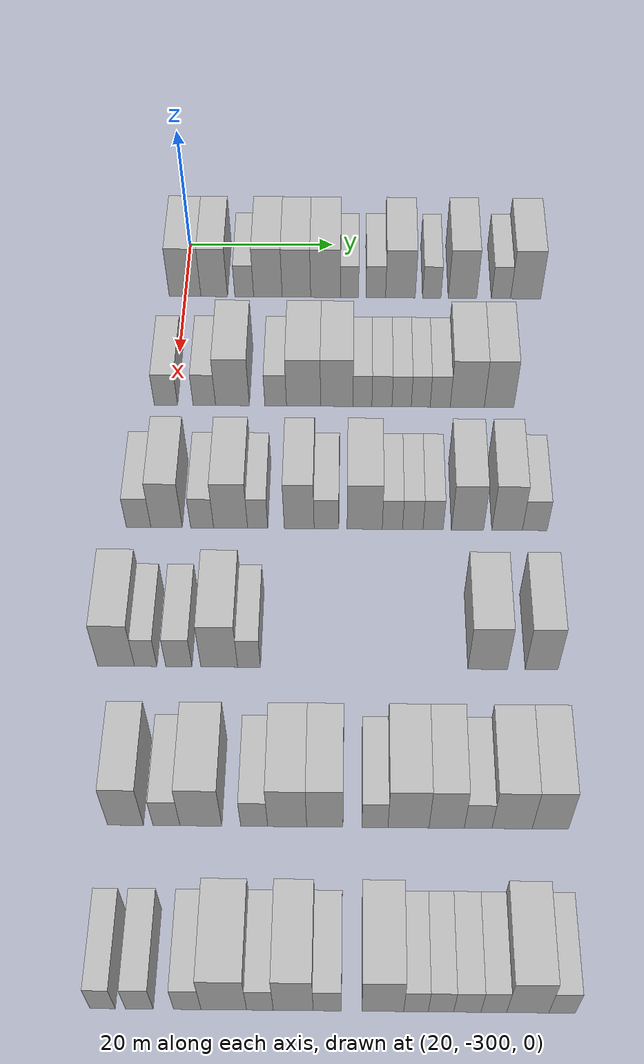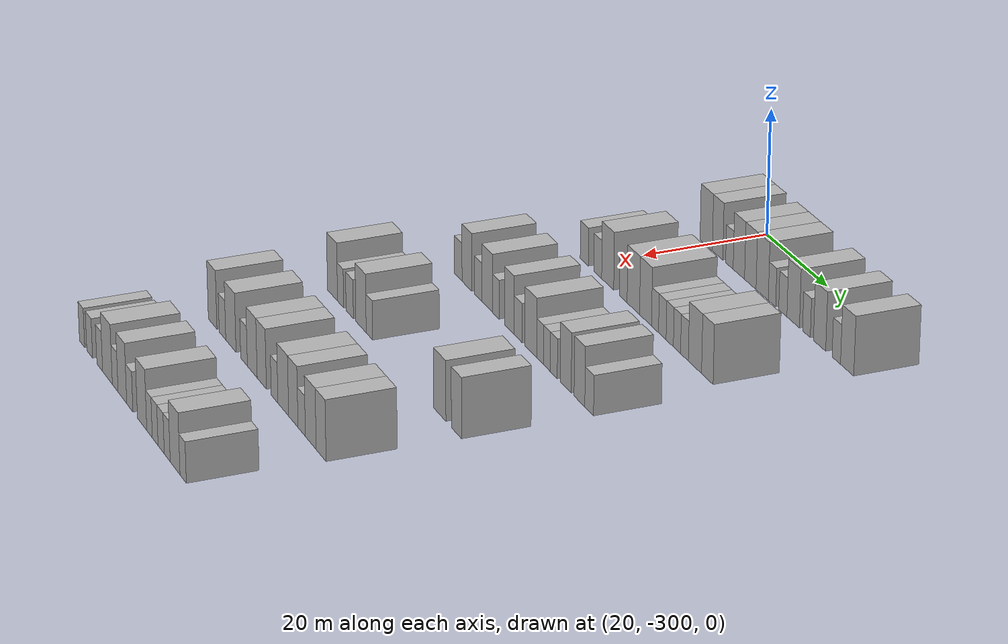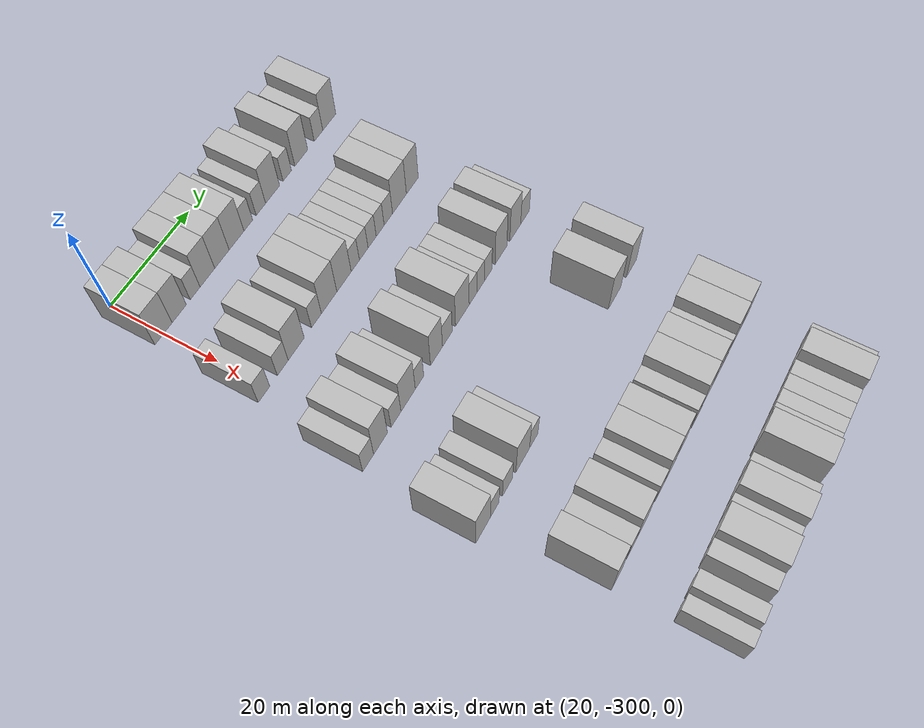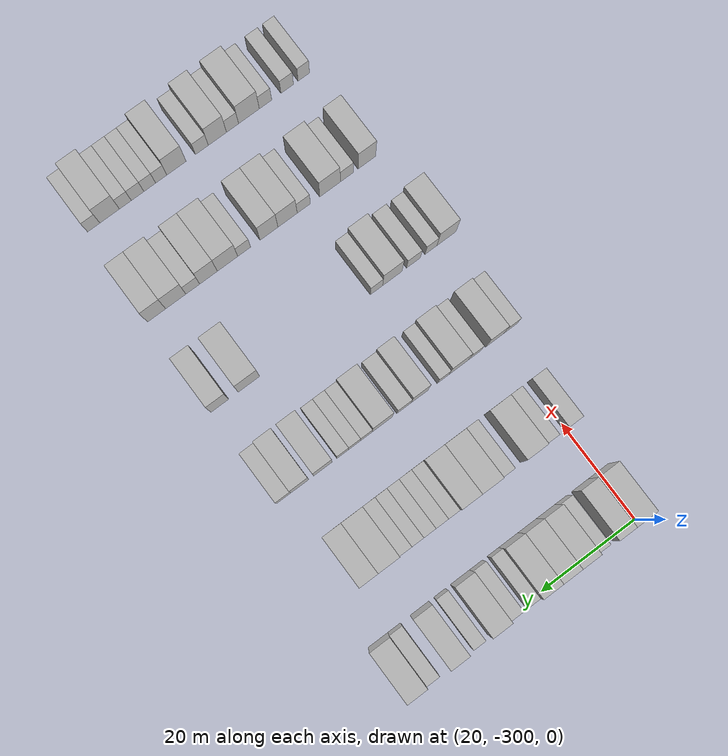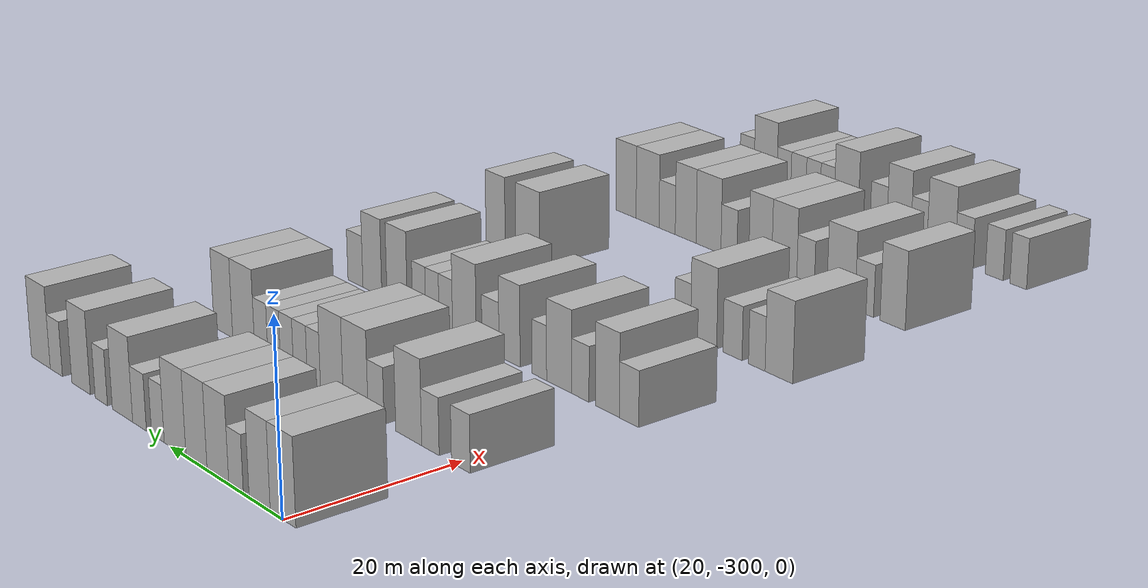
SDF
<sdf version="1.6">
 <world name="default">
  <model name="building_13">
   <static>1</static>
   <pose>25.0000 -299.9994 0 0.000000 0.000000 0.000000</pose>
   <link name="link">
    <pose>0 0 4.50 0 0 0</pose>
    <collision name="collision"><geometry><box><size>10.0000 4.3122 9.0000</size></box></geometry></collision>
    <visual name="visual">
     <cast_shadows>0</cast_shadows>
     <geometry><box><size>10.0000 4.3122 9.0000</size></box></geometry>
     <material>
      <script>
       <uri>model://HANNAS_wall/materials/scripts</uri>
       <uri>model://HANNAS_wall/materials/textures</uri>
       <name>vrc/HANNAS_wall</name>
      </script>
     </material>
    </visual>
   </link>
  </model>
  <model name="building_14">
   <static>1</static>
   <pose>25.0000 -296.0288 0 0.000000 0.000000 0.000000</pose>
   <link name="link">
    <pose>0 0 4.50 0 0 0</pose>
    <collision name="collision"><geometry><box><size>10.0000 3.6291 9.0000</size></box></geometry></collision>
    <visual name="visual">
     <cast_shadows>0</cast_shadows>
     <geometry><box><size>10.0000 3.6291 9.0000</size></box></geometry>
     <material>
      <script>
       <uri>model://HANNAS_wall/materials/scripts</uri>
       <uri>model://HANNAS_wall/materials/textures</uri>
       <name>vrc/HANNAS_wall</name>
      </script>
     </material>
    </visual>
   </link>
  </model>
  <model name="building_15">
   <static>1</static>
   <pose>25.0000 -291.9321 0 0.000000 0.000000 0.000000</pose>
   <link name="link">
    <pose>0 0 3.00 0 0 0</pose>
    <collision name="collision"><geometry><box><size>10.0000 2.5641 6.0000</size></box></geometry></collision>
    <visual name="visual">
     <cast_shadows>0</cast_shadows>
     <geometry><box><size>10.0000 2.5641 6.0000</size></box></geometry>
     <material>
      <script>
       <uri>model://HANNAS_wall/materials/scripts</uri>
       <uri>model://HANNAS_wall/materials/textures</uri>
       <name>vrc/HANNAS_wall</name>
      </script>
     </material>
    </visual>
   </link>
  </model>
  <model name="building_16">
   <static>1</static>
   <pose>25.0000 -288.7070 0 0.000000 0.000000 0.000000</pose>
   <link name="link">
    <pose>0 0 4.50 0 0 0</pose>
    <collision name="collision"><geometry><box><size>10.0000 3.8862 9.0000</size></box></geometry></collision>
    <visual name="visual">
     <cast_shadows>0</cast_shadows>
     <geometry><box><size>10.0000 3.8862 9.0000</size></box></geometry>
     <material>
      <script>
       <uri>model://HANNAS_wall/materials/scripts</uri>
       <uri>model://HANNAS_wall/materials/textures</uri>
       <name>vrc/HANNAS_wall</name>
      </script>
     </material>
    </visual>
   </link>
  </model>
  <model name="building_17">
   <static>1</static>
   <pose>25.0000 -284.8206 0 0.000000 0.000000 0.000000</pose>
   <link name="link">
    <pose>0 0 4.50 0 0 0</pose>
    <collision name="collision"><geometry><box><size>10.0000 3.8864 9.0000</size></box></geometry></collision>
    <visual name="visual">
     <cast_shadows>0</cast_shadows>
     <geometry><box><size>10.0000 3.8864 9.0000</size></box></geometry>
     <material>
      <script>
       <uri>model://HANNAS_wall/materials/scripts</uri>
       <uri>model://HANNAS_wall/materials/textures</uri>
       <name>vrc/HANNAS_wall</name>
      </script>
     </material>
    </visual>
   </link>
  </model>
  <model name="building_18">
   <static>1</static>
   <pose>25.0000 -280.8364 0 0.000000 0.000000 0.000000</pose>
   <link name="link">
    <pose>0 0 4.50 0 0 0</pose>
    <collision name="collision"><geometry><box><size>10.0000 4.0821 9.0000</size></box></geometry></collision>
    <visual name="visual">
     <cast_shadows>0</cast_shadows>
     <geometry><box><size>10.0000 4.0821 9.0000</size></box></geometry>
     <material>
      <script>
       <uri>model://HANNAS_wall/materials/scripts</uri>
       <uri>model://HANNAS_wall/materials/textures</uri>
       <name>vrc/HANNAS_wall</name>
      </script>
     </material>
    </visual>
   </link>
  </model>
  <model name="building_19">
   <static>1</static>
   <pose>25.0000 -277.5818 0 0.000000 0.000000 0.000000</pose>
   <link name="link">
    <pose>0 0 3.00 0 0 0</pose>
    <collision name="collision"><geometry><box><size>10.0000 2.4271 6.0000</size></box></geometry></collision>
    <visual name="visual">
     <cast_shadows>0</cast_shadows>
     <geometry><box><size>10.0000 2.4271 6.0000</size></box></geometry>
     <material>
      <script>
       <uri>model://HANNAS_wall/materials/scripts</uri>
       <uri>model://HANNAS_wall/materials/textures</uri>
       <name>vrc/HANNAS_wall</name>
      </script>
     </material>
    </visual>
   </link>
  </model>
  <model name="building_20">
   <static>1</static>
   <pose>25.0000 -274.0296 0 0.000000 0.000000 0.000000</pose>
   <link name="link">
    <pose>0 0 3.00 0 0 0</pose>
    <collision name="collision"><geometry><box><size>10.0000 2.6774 6.0000</size></box></geometry></collision>
    <visual name="visual">
     <cast_shadows>0</cast_shadows>
     <geometry><box><size>10.0000 2.6774 6.0000</size></box></geometry>
     <material>
      <script>
       <uri>model://HANNAS_wall/materials/scripts</uri>
       <uri>model://HANNAS_wall/materials/textures</uri>
       <name>vrc/HANNAS_wall</name>
      </script>
     </material>
    </visual>
   </link>
  </model>
  <model name="building_21">
   <static>1</static>
   <pose>25.0000 -270.6690 0 0.000000 0.000000 0.000000</pose>
   <link name="link">
    <pose>0 0 4.50 0 0 0</pose>
    <collision name="collision"><geometry><box><size>10.0000 4.0437 9.0000</size></box></geometry></collision>
    <visual name="visual">
     <cast_shadows>0</cast_shadows>
     <geometry><box><size>10.0000 4.0437 9.0000</size></box></geometry>
     <material>
      <script>
       <uri>model://HANNAS_wall/materials/scripts</uri>
       <uri>model://HANNAS_wall/materials/textures</uri>
       <name>vrc/HANNAS_wall</name>
      </script>
     </material>
    </visual>
   </link>
  </model>
  <model name="building_22">
   <static>1</static>
   <pose>25.0000 -266.4008 0 0.000000 0.000000 0.000000</pose>
   <link name="link">
    <pose>0 0 3.00 0 0 0</pose>
    <collision name="collision"><geometry><box><size>10.0000 2.4927 6.0000</size></box></geometry></collision>
    <visual name="visual">
     <cast_shadows>0</cast_shadows>
     <geometry><box><size>10.0000 2.4927 6.0000</size></box></geometry>
     <material>
      <script>
       <uri>model://HANNAS_wall/materials/scripts</uri>
       <uri>model://HANNAS_wall/materials/textures</uri>
       <name>vrc/HANNAS_wall</name>
      </script>
     </material>
    </visual>
   </link>
  </model>
  <model name="building_23">
   <static>1</static>
   <pose>25.0000 -262.2214 0 0.000000 0.000000 0.000000</pose>
   <link name="link">
    <pose>0 0 4.50 0 0 0</pose>
    <collision name="collision"><geometry><box><size>10.0000 3.8660 9.0000</size></box></geometry></collision>
    <visual name="visual">
     <cast_shadows>0</cast_shadows>
     <geometry><box><size>10.0000 3.8660 9.0000</size></box></geometry>
     <material>
      <script>
       <uri>model://HANNAS_wall/materials/scripts</uri>
       <uri>model://HANNAS_wall/materials/textures</uri>
       <name>vrc/HANNAS_wall</name>
      </script>
     </material>
    </visual>
   </link>
  </model>
  <model name="building_24">
   <static>1</static>
   <pose>25.0000 -256.9810 0 0.000000 0.000000 0.000000</pose>
   <link name="link">
    <pose>0 0 3.00 0 0 0</pose>
    <collision name="collision"><geometry><box><size>10.0000 2.6148 6.0000</size></box></geometry></collision>
    <visual name="visual">
     <cast_shadows>0</cast_shadows>
     <geometry><box><size>10.0000 2.6148 6.0000</size></box></geometry>
     <material>
      <script>
       <uri>model://HANNAS_wall/materials/scripts</uri>
       <uri>model://HANNAS_wall/materials/textures</uri>
       <name>vrc/HANNAS_wall</name>
      </script>
     </material>
    </visual>
   </link>
  </model>
  <model name="building_25">
   <static>1</static>
   <pose>25.0000 -253.6319 0 0.000000 0.000000 0.000000</pose>
   <link name="link">
    <pose>0 0 4.50 0 0 0</pose>
    <collision name="collision"><geometry><box><size>10.0000 4.0835 9.0000</size></box></geometry></collision>
    <visual name="visual">
     <cast_shadows>0</cast_shadows>
     <geometry><box><size>10.0000 4.0835 9.0000</size></box></geometry>
     <material>
      <script>
       <uri>model://HANNAS_wall/materials/scripts</uri>
       <uri>model://HANNAS_wall/materials/textures</uri>
       <name>vrc/HANNAS_wall</name>
      </script>
     </material>
    </visual>
   </link>
  </model>
  <model name="building_186">
   <static>1</static>
   <pose>44.0000 -301.1050 0 0.000000 0.000000 0.000000</pose>
   <link name="link">
    <pose>0 0 3.00 0 0 0</pose>
    <collision name="collision"><geometry><box><size>10.0000 2.9947 6.0000</size></box></geometry></collision>
    <visual name="visual">
     <cast_shadows>0</cast_shadows>
     <geometry><box><size>10.0000 2.9947 6.0000</size></box></geometry>
     <material>
      <script>
       <uri>model://HANNAS_wall/materials/scripts</uri>
       <uri>model://HANNAS_wall/materials/textures</uri>
       <name>vrc/HANNAS_wall</name>
      </script>
     </material>
    </visual>
   </link>
  </model>
  <model name="building_187">
   <static>1</static>
   <pose>44.0000 -296.1640 0 0.000000 0.000000 0.000000</pose>
   <link name="link">
    <pose>0 0 3.00 0 0 0</pose>
    <collision name="collision"><geometry><box><size>10.0000 2.8872 6.0000</size></box></geometry></collision>
    <visual name="visual">
     <cast_shadows>0</cast_shadows>
     <geometry><box><size>10.0000 2.8872 6.0000</size></box></geometry>
     <material>
      <script>
       <uri>model://HANNAS_wall/materials/scripts</uri>
       <uri>model://HANNAS_wall/materials/textures</uri>
       <name>vrc/HANNAS_wall</name>
      </script>
     </material>
    </visual>
   </link>
  </model>
  <model name="building_188">
   <static>1</static>
   <pose>44.0000 -292.5445 0 0.000000 0.000000 0.000000</pose>
   <link name="link">
    <pose>0 0 4.50 0 0 0</pose>
    <collision name="collision"><geometry><box><size>10.0000 4.3517 9.0000</size></box></geometry></collision>
    <visual name="visual">
     <cast_shadows>0</cast_shadows>
     <geometry><box><size>10.0000 4.3517 9.0000</size></box></geometry>
     <material>
      <script>
       <uri>model://HANNAS_wall/materials/scripts</uri>
       <uri>model://HANNAS_wall/materials/textures</uri>
       <name>vrc/HANNAS_wall</name>
      </script>
     </material>
    </visual>
   </link>
  </model>
  <model name="building_189">
   <static>1</static>
   <pose>44.0000 -286.9796 0 0.000000 0.000000 0.000000</pose>
   <link name="link">
    <pose>0 0 3.00 0 0 0</pose>
    <collision name="collision"><geometry><box><size>10.0000 2.7782 6.0000</size></box></geometry></collision>
    <visual name="visual">
     <cast_shadows>0</cast_shadows>
     <geometry><box><size>10.0000 2.7782 6.0000</size></box></geometry>
     <material>
      <script>
       <uri>model://HANNAS_wall/materials/scripts</uri>
       <uri>model://HANNAS_wall/materials/textures</uri>
       <name>vrc/HANNAS_wall</name>
      </script>
     </material>
    </visual>
   </link>
  </model>
  <model name="building_190">
   <static>1</static>
   <pose>44.0000 -283.3926 0 0.000000 0.000000 0.000000</pose>
   <link name="link">
    <pose>0 0 4.50 0 0 0</pose>
    <collision name="collision"><geometry><box><size>10.0000 4.3957 9.0000</size></box></geometry></collision>
    <visual name="visual">
     <cast_shadows>0</cast_shadows>
     <geometry><box><size>10.0000 4.3957 9.0000</size></box></geometry>
     <material>
      <script>
       <uri>model://HANNAS_wall/materials/scripts</uri>
       <uri>model://HANNAS_wall/materials/textures</uri>
       <name>vrc/HANNAS_wall</name>
      </script>
     </material>
    </visual>
   </link>
  </model>
  <model name="building_191">
   <static>1</static>
   <pose>44.0000 -279.1192 0 0.000000 0.000000 0.000000</pose>
   <link name="link">
    <pose>0 0 4.50 0 0 0</pose>
    <collision name="collision"><geometry><box><size>10.0000 4.1512 9.0000</size></box></geometry></collision>
    <visual name="visual">
     <cast_shadows>0</cast_shadows>
     <geometry><box><size>10.0000 4.1512 9.0000</size></box></geometry>
     <material>
      <script>
       <uri>model://HANNAS_wall/materials/scripts</uri>
       <uri>model://HANNAS_wall/materials/textures</uri>
       <name>vrc/HANNAS_wall</name>
      </script>
     </material>
    </visual>
   </link>
  </model>
  <model name="building_192">
   <static>1</static>
   <pose>44.0000 -275.8319 0 0.000000 0.000000 0.000000</pose>
   <link name="link">
    <pose>0 0 3.00 0 0 0</pose>
    <collision name="collision"><geometry><box><size>10.0000 2.4233 6.0000</size></box></geometry></collision>
    <visual name="visual">
     <cast_shadows>0</cast_shadows>
     <geometry><box><size>10.0000 2.4233 6.0000</size></box></geometry>
     <material>
      <script>
       <uri>model://HANNAS_wall/materials/scripts</uri>
       <uri>model://HANNAS_wall/materials/textures</uri>
       <name>vrc/HANNAS_wall</name>
      </script>
     </material>
    </visual>
   </link>
  </model>
  <model name="building_193">
   <static>1</static>
   <pose>44.0000 -273.3295 0 0.000000 0.000000 0.000000</pose>
   <link name="link">
    <pose>0 0 3.00 0 0 0</pose>
    <collision name="collision"><geometry><box><size>10.0000 2.5814 6.0000</size></box></geometry></collision>
    <visual name="visual">
     <cast_shadows>0</cast_shadows>
     <geometry><box><size>10.0000 2.5814 6.0000</size></box></geometry>
     <material>
      <script>
       <uri>model://HANNAS_wall/materials/scripts</uri>
       <uri>model://HANNAS_wall/materials/textures</uri>
       <name>vrc/HANNAS_wall</name>
      </script>
     </material>
    </visual>
   </link>
  </model>
  <model name="building_194">
   <static>1</static>
   <pose>44.0000 -270.7969 0 0.000000 0.000000 0.000000</pose>
   <link name="link">
    <pose>0 0 3.00 0 0 0</pose>
    <collision name="collision"><geometry><box><size>10.0000 2.4838 6.0000</size></box></geometry></collision>
    <visual name="visual">
     <cast_shadows>0</cast_shadows>
     <geometry><box><size>10.0000 2.4838 6.0000</size></box></geometry>
     <material>
      <script>
       <uri>model://HANNAS_wall/materials/scripts</uri>
       <uri>model://HANNAS_wall/materials/textures</uri>
       <name>vrc/HANNAS_wall</name>
      </script>
     </material>
    </visual>
   </link>
  </model>
  <model name="building_195">
   <static>1</static>
   <pose>44.0000 -268.3442 0 0.000000 0.000000 0.000000</pose>
   <link name="link">
    <pose>0 0 3.00 0 0 0</pose>
    <collision name="collision"><geometry><box><size>10.0000 2.4216 6.0000</size></box></geometry></collision>
    <visual name="visual">
     <cast_shadows>0</cast_shadows>
     <geometry><box><size>10.0000 2.4216 6.0000</size></box></geometry>
     <material>
      <script>
       <uri>model://HANNAS_wall/materials/scripts</uri>
       <uri>model://HANNAS_wall/materials/textures</uri>
       <name>vrc/HANNAS_wall</name>
      </script>
     </material>
    </visual>
   </link>
  </model>
  <model name="building_196">
   <static>1</static>
   <pose>44.0000 -265.8405 0 0.000000 0.000000 0.000000</pose>
   <link name="link">
    <pose>0 0 3.00 0 0 0</pose>
    <collision name="collision"><geometry><box><size>10.0000 2.5860 6.0000</size></box></geometry></collision>
    <visual name="visual">
     <cast_shadows>0</cast_shadows>
     <geometry><box><size>10.0000 2.5860 6.0000</size></box></geometry>
     <material>
      <script>
       <uri>model://HANNAS_wall/materials/scripts</uri>
       <uri>model://HANNAS_wall/materials/textures</uri>
       <name>vrc/HANNAS_wall</name>
      </script>
     </material>
    </visual>
   </link>
  </model>
  <model name="building_197">
   <static>1</static>
   <pose>44.0000 -262.3592 0 0.000000 0.000000 0.000000</pose>
   <link name="link">
    <pose>0 0 4.50 0 0 0</pose>
    <collision name="collision"><geometry><box><size>10.0000 4.3766 9.0000</size></box></geometry></collision>
    <visual name="visual">
     <cast_shadows>0</cast_shadows>
     <geometry><box><size>10.0000 4.3766 9.0000</size></box></geometry>
     <material>
      <script>
       <uri>model://HANNAS_wall/materials/scripts</uri>
       <uri>model://HANNAS_wall/materials/textures</uri>
       <name>vrc/HANNAS_wall</name>
      </script>
     </material>
    </visual>
   </link>
  </model>
  <model name="building_198">
   <static>1</static>
   <pose>44.0000 -258.2731 0 0.000000 0.000000 0.000000</pose>
   <link name="link">
    <pose>0 0 4.50 0 0 0</pose>
    <collision name="collision"><geometry><box><size>10.0000 3.7955 9.0000</size></box></geometry></collision>
    <visual name="visual">
     <cast_shadows>0</cast_shadows>
     <geometry><box><size>10.0000 3.7955 9.0000</size></box></geometry>
     <material>
      <script>
       <uri>model://HANNAS_wall/materials/scripts</uri>
       <uri>model://HANNAS_wall/materials/textures</uri>
       <name>vrc/HANNAS_wall</name>
      </script>
     </material>
    </visual>
   </link>
  </model>
  <model name="building_358">
   <static>1</static>
   <pose>63.0000 -302.9097 0 0.000000 0.000000 0.000000</pose>
   <link name="link">
    <pose>0 0 3.00 0 0 0</pose>
    <collision name="collision"><geometry><box><size>10.0000 2.9727 6.0000</size></box></geometry></collision>
    <visual name="visual">
     <cast_shadows>0</cast_shadows>
     <geometry><box><size>10.0000 2.9727 6.0000</size></box></geometry>
     <material>
      <script>
       <uri>model://HANNAS_wall/materials/scripts</uri>
       <uri>model://HANNAS_wall/materials/textures</uri>
       <name>vrc/HANNAS_wall</name>
      </script>
     </material>
    </visual>
   </link>
  </model>
  <model name="building_359">
   <static>1</static>
   <pose>63.0000 -299.5206 0 0.000000 0.000000 0.000000</pose>
   <link name="link">
    <pose>0 0 4.50 0 0 0</pose>
    <collision name="collision"><geometry><box><size>10.0000 3.8054 9.0000</size></box></geometry></collision>
    <visual name="visual">
     <cast_shadows>0</cast_shadows>
     <geometry><box><size>10.0000 3.8054 9.0000</size></box></geometry>
     <material>
      <script>
       <uri>model://HANNAS_wall/materials/scripts</uri>
       <uri>model://HANNAS_wall/materials/textures</uri>
       <name>vrc/HANNAS_wall</name>
      </script>
     </material>
    </visual>
   </link>
  </model>
  <model name="building_360">
   <static>1</static>
   <pose>63.0000 -295.2240 0 0.000000 0.000000 0.000000</pose>
   <link name="link">
    <pose>0 0 3.00 0 0 0</pose>
    <collision name="collision"><geometry><box><size>10.0000 2.7877 6.0000</size></box></geometry></collision>
    <visual name="visual">
     <cast_shadows>0</cast_shadows>
     <geometry><box><size>10.0000 2.7877 6.0000</size></box></geometry>
     <material>
      <script>
       <uri>model://HANNAS_wall/materials/scripts</uri>
       <uri>model://HANNAS_wall/materials/textures</uri>
       <name>vrc/HANNAS_wall</name>
      </script>
     </material>
    </visual>
   </link>
  </model>
  <model name="building_361">
   <static>1</static>
   <pose>63.0000 -291.7738 0 0.000000 0.000000 0.000000</pose>
   <link name="link">
    <pose>0 0 4.50 0 0 0</pose>
    <collision name="collision"><geometry><box><size>10.0000 4.1128 9.0000</size></box></geometry></collision>
    <visual name="visual">
     <cast_shadows>0</cast_shadows>
     <geometry><box><size>10.0000 4.1128 9.0000</size></box></geometry>
     <material>
      <script>
       <uri>model://HANNAS_wall/materials/scripts</uri>
       <uri>model://HANNAS_wall/materials/textures</uri>
       <name>vrc/HANNAS_wall</name>
      </script>
     </material>
    </visual>
   </link>
  </model>
  <model name="building_362">
   <static>1</static>
   <pose>63.0000 -288.4935 0 0.000000 0.000000 0.000000</pose>
   <link name="link">
    <pose>0 0 3.00 0 0 0</pose>
    <collision name="collision"><geometry><box><size>10.0000 2.4477 6.0000</size></box></geometry></collision>
    <visual name="visual">
     <cast_shadows>0</cast_shadows>
     <geometry><box><size>10.0000 2.4477 6.0000</size></box></geometry>
     <material>
      <script>
       <uri>model://HANNAS_wall/materials/scripts</uri>
       <uri>model://HANNAS_wall/materials/textures</uri>
       <name>vrc/HANNAS_wall</name>
      </script>
     </material>
    </visual>
   </link>
  </model>
  <model name="building_363">
   <static>1</static>
   <pose>63.0000 -283.4668 0 0.000000 0.000000 0.000000</pose>
   <link name="link">
    <pose>0 0 4.50 0 0 0</pose>
    <collision name="collision"><geometry><box><size>10.0000 3.6057 9.0000</size></box></geometry></collision>
    <visual name="visual">
     <cast_shadows>0</cast_shadows>
     <geometry><box><size>10.0000 3.6057 9.0000</size></box></geometry>
     <material>
      <script>
       <uri>model://HANNAS_wall/materials/scripts</uri>
       <uri>model://HANNAS_wall/materials/textures</uri>
       <name>vrc/HANNAS_wall</name>
      </script>
     </material>
    </visual>
   </link>
  </model>
  <model name="building_364">
   <static>1</static>
   <pose>63.0000 -280.1723 0 0.000000 0.000000 0.000000</pose>
   <link name="link">
    <pose>0 0 3.00 0 0 0</pose>
    <collision name="collision"><geometry><box><size>10.0000 2.9832 6.0000</size></box></geometry></collision>
    <visual name="visual">
     <cast_shadows>0</cast_shadows>
     <geometry><box><size>10.0000 2.9832 6.0000</size></box></geometry>
     <material>
      <script>
       <uri>model://HANNAS_wall/materials/scripts</uri>
       <uri>model://HANNAS_wall/materials/textures</uri>
       <name>vrc/HANNAS_wall</name>
      </script>
     </material>
    </visual>
   </link>
  </model>
  <model name="building_365">
   <static>1</static>
   <pose>63.0000 -275.5552 0 0.000000 0.000000 0.000000</pose>
   <link name="link">
    <pose>0 0 4.50 0 0 0</pose>
    <collision name="collision"><geometry><box><size>10.0000 4.2510 9.0000</size></box></geometry></collision>
    <visual name="visual">
     <cast_shadows>0</cast_shadows>
     <geometry><box><size>10.0000 4.2510 9.0000</size></box></geometry>
     <material>
      <script>
       <uri>model://HANNAS_wall/materials/scripts</uri>
       <uri>model://HANNAS_wall/materials/textures</uri>
       <name>vrc/HANNAS_wall</name>
      </script>
     </material>
    </visual>
   </link>
  </model>
  <model name="building_366">
   <static>1</static>
   <pose>63.0000 -272.2029 0 0.000000 0.000000 0.000000</pose>
   <link name="link">
    <pose>0 0 3.00 0 0 0</pose>
    <collision name="collision"><geometry><box><size>10.0000 2.4536 6.0000</size></box></geometry></collision>
    <visual name="visual">
     <cast_shadows>0</cast_shadows>
     <geometry><box><size>10.0000 2.4536 6.0000</size></box></geometry>
     <material>
      <script>
       <uri>model://HANNAS_wall/materials/scripts</uri>
       <uri>model://HANNAS_wall/materials/textures</uri>
       <name>vrc/HANNAS_wall</name>
      </script>
     </material>
    </visual>
   </link>
  </model>
  <model name="building_367">
   <static>1</static>
   <pose>63.0000 -269.7425 0 0.000000 0.000000 0.000000</pose>
   <link name="link">
    <pose>0 0 3.00 0 0 0</pose>
    <collision name="collision"><geometry><box><size>10.0000 2.4672 6.0000</size></box></geometry></collision>
    <visual name="visual">
     <cast_shadows>0</cast_shadows>
     <geometry><box><size>10.0000 2.4672 6.0000</size></box></geometry>
     <material>
      <script>
       <uri>model://HANNAS_wall/materials/scripts</uri>
       <uri>model://HANNAS_wall/materials/textures</uri>
       <name>vrc/HANNAS_wall</name>
      </script>
     </material>
    </visual>
   </link>
  </model>
  <model name="building_368">
   <static>1</static>
   <pose>63.0000 -267.2858 0 0.000000 0.000000 0.000000</pose>
   <link name="link">
    <pose>0 0 3.00 0 0 0</pose>
    <collision name="collision"><geometry><box><size>10.0000 2.4463 6.0000</size></box></geometry></collision>
    <visual name="visual">
     <cast_shadows>0</cast_shadows>
     <geometry><box><size>10.0000 2.4463 6.0000</size></box></geometry>
     <material>
      <script>
       <uri>model://HANNAS_wall/materials/scripts</uri>
       <uri>model://HANNAS_wall/materials/textures</uri>
       <name>vrc/HANNAS_wall</name>
      </script>
     </material>
    </visual>
   </link>
  </model>
  <model name="building_369">
   <static>1</static>
   <pose>63.0000 -263.1213 0 0.000000 0.000000 0.000000</pose>
   <link name="link">
    <pose>0 0 4.50 0 0 0</pose>
    <collision name="collision"><geometry><box><size>10.0000 3.8828 9.0000</size></box></geometry></collision>
    <visual name="visual">
     <cast_shadows>0</cast_shadows>
     <geometry><box><size>10.0000 3.8828 9.0000</size></box></geometry>
     <material>
      <script>
       <uri>model://HANNAS_wall/materials/scripts</uri>
       <uri>model://HANNAS_wall/materials/textures</uri>
       <name>vrc/HANNAS_wall</name>
      </script>
     </material>
    </visual>
   </link>
  </model>
  <model name="building_370">
   <static>1</static>
   <pose>63.0000 -258.3330 0 0.000000 0.000000 0.000000</pose>
   <link name="link">
    <pose>0 0 4.50 0 0 0</pose>
    <collision name="collision"><geometry><box><size>10.0000 3.6938 9.0000</size></box></geometry></collision>
    <visual name="visual">
     <cast_shadows>0</cast_shadows>
     <geometry><box><size>10.0000 3.6938 9.0000</size></box></geometry>
     <material>
      <script>
       <uri>model://HANNAS_wall/materials/scripts</uri>
       <uri>model://HANNAS_wall/materials/textures</uri>
       <name>vrc/HANNAS_wall</name>
      </script>
     </material>
    </visual>
   </link>
  </model>
  <model name="building_371">
   <static>1</static>
   <pose>63.0000 -254.9950 0 0.000000 0.000000 0.000000</pose>
   <link name="link">
    <pose>0 0 3.00 0 0 0</pose>
    <collision name="collision"><geometry><box><size>10.0000 2.9823 6.0000</size></box></geometry></collision>
    <visual name="visual">
     <cast_shadows>0</cast_shadows>
     <geometry><box><size>10.0000 2.9823 6.0000</size></box></geometry>
     <material>
      <script>
       <uri>model://HANNAS_wall/materials/scripts</uri>
       <uri>model://HANNAS_wall/materials/textures</uri>
       <name>vrc/HANNAS_wall</name>
      </script>
     </material>
    </visual>
   </link>
  </model>
  <model name="building_527">
   <static>1</static>
   <pose>82.0000 -303.7501 0 0.000000 0.000000 0.000000</pose>
   <link name="link">
    <pose>0 0 4.50 0 0 0</pose>
    <collision name="collision"><geometry><box><size>10.0000 4.1745 9.0000</size></box></geometry></collision>
    <visual name="visual">
     <cast_shadows>0</cast_shadows>
     <geometry><box><size>10.0000 4.1745 9.0000</size></box></geometry>
     <material>
      <script>
       <uri>model://HANNAS_wall/materials/scripts</uri>
       <uri>model://HANNAS_wall/materials/textures</uri>
       <name>vrc/HANNAS_wall</name>
      </script>
     </material>
    </visual>
   </link>
  </model>
  <model name="building_528">
   <static>1</static>
   <pose>82.0000 -300.3931 0 0.000000 0.000000 0.000000</pose>
   <link name="link">
    <pose>0 0 3.00 0 0 0</pose>
    <collision name="collision"><geometry><box><size>10.0000 2.5396 6.0000</size></box></geometry></collision>
    <visual name="visual">
     <cast_shadows>0</cast_shadows>
     <geometry><box><size>10.0000 2.5396 6.0000</size></box></geometry>
     <material>
      <script>
       <uri>model://HANNAS_wall/materials/scripts</uri>
       <uri>model://HANNAS_wall/materials/textures</uri>
       <name>vrc/HANNAS_wall</name>
      </script>
     </material>
    </visual>
   </link>
  </model>
  <model name="building_529">
   <static>1</static>
   <pose>82.0000 -296.6325 0 0.000000 0.000000 0.000000</pose>
   <link name="link">
    <pose>0 0 3.00 0 0 0</pose>
    <collision name="collision"><geometry><box><size>10.0000 2.9816 6.0000</size></box></geometry></collision>
    <visual name="visual">
     <cast_shadows>0</cast_shadows>
     <geometry><box><size>10.0000 2.9816 6.0000</size></box></geometry>
     <material>
      <script>
       <uri>model://HANNAS_wall/materials/scripts</uri>
       <uri>model://HANNAS_wall/materials/textures</uri>
       <name>vrc/HANNAS_wall</name>
      </script>
     </material>
    </visual>
   </link>
  </model>
  <model name="building_530">
   <static>1</static>
   <pose>82.0000 -292.0553 0 0.000000 0.000000 0.000000</pose>
   <link name="link">
    <pose>0 0 4.50 0 0 0</pose>
    <collision name="collision"><geometry><box><size>10.0000 4.1729 9.0000</size></box></geometry></collision>
    <visual name="visual">
     <cast_shadows>0</cast_shadows>
     <geometry><box><size>10.0000 4.1729 9.0000</size></box></geometry>
     <material>
      <script>
       <uri>model://HANNAS_wall/materials/scripts</uri>
       <uri>model://HANNAS_wall/materials/textures</uri>
       <name>vrc/HANNAS_wall</name>
      </script>
     </material>
    </visual>
   </link>
  </model>
  <model name="building_531">
   <static>1</static>
   <pose>82.0000 -288.6692 0 0.000000 0.000000 0.000000</pose>
   <link name="link">
    <pose>0 0 3.00 0 0 0</pose>
    <collision name="collision"><geometry><box><size>10.0000 2.5993 6.0000</size></box></geometry></collision>
    <visual name="visual">
     <cast_shadows>0</cast_shadows>
     <geometry><box><size>10.0000 2.5993 6.0000</size></box></geometry>
     <material>
      <script>
       <uri>model://HANNAS_wall/materials/scripts</uri>
       <uri>model://HANNAS_wall/materials/textures</uri>
       <name>vrc/HANNAS_wall</name>
      </script>
     </material>
    </visual>
   </link>
  </model>
  <model name="building_532">
   <static>1</static>
   <pose>82.0000 -261.6251 0 0.000000 0.000000 0.000000</pose>
   <link name="link">
    <pose>0 0 4.50 0 0 0</pose>
    <collision name="collision"><geometry><box><size>10.0000 4.4963 9.0000</size></box></geometry></collision>
    <visual name="visual">
     <cast_shadows>0</cast_shadows>
     <geometry><box><size>10.0000 4.4963 9.0000</size></box></geometry>
     <material>
      <script>
       <uri>model://HANNAS_wall/materials/scripts</uri>
       <uri>model://HANNAS_wall/materials/textures</uri>
       <name>vrc/HANNAS_wall</name>
      </script>
     </material>
    </visual>
   </link>
  </model>
  <model name="building_533">
   <static>1</static>
   <pose>82.0000 -255.5259 0 0.000000 0.000000 0.000000</pose>
   <link name="link">
    <pose>0 0 4.50 0 0 0</pose>
    <collision name="collision"><geometry><box><size>10.0000 3.7020 9.0000</size></box></geometry></collision>
    <visual name="visual">
     <cast_shadows>0</cast_shadows>
     <geometry><box><size>10.0000 3.7020 9.0000</size></box></geometry>
     <material>
      <script>
       <uri>model://HANNAS_wall/materials/scripts</uri>
       <uri>model://HANNAS_wall/materials/textures</uri>
       <name>vrc/HANNAS_wall</name>
      </script>
     </material>
    </visual>
   </link>
  </model>
  <model name="building_705">
   <static>1</static>
   <pose>101.0000 -300.8734 0 0.000000 0.000000 0.000000</pose>
   <link name="link">
    <pose>0 0 4.50 0 0 0</pose>
    <collision name="collision"><geometry><box><size>10.0000 3.7998 9.0000</size></box></geometry></collision>
    <visual name="visual">
     <cast_shadows>0</cast_shadows>
     <geometry><box><size>10.0000 3.7998 9.0000</size></box></geometry>
     <material>
      <script>
       <uri>model://HANNAS_wall/materials/scripts</uri>
       <uri>model://HANNAS_wall/materials/textures</uri>
       <name>vrc/HANNAS_wall</name>
      </script>
     </material>
    </visual>
   </link>
  </model>
  <model name="building_706">
   <static>1</static>
   <pose>101.0000 -296.5433 0 0.000000 0.000000 0.000000</pose>
   <link name="link">
    <pose>0 0 3.00 0 0 0</pose>
    <collision name="collision"><geometry><box><size>10.0000 2.8605 6.0000</size></box></geometry></collision>
    <visual name="visual">
     <cast_shadows>0</cast_shadows>
     <geometry><box><size>10.0000 2.8605 6.0000</size></box></geometry>
     <material>
      <script>
       <uri>model://HANNAS_wall/materials/scripts</uri>
       <uri>model://HANNAS_wall/materials/textures</uri>
       <name>vrc/HANNAS_wall</name>
      </script>
     </material>
    </visual>
   </link>
  </model>
  <model name="building_707">
   <static>1</static>
   <pose>101.0000 -292.8954 0 0.000000 0.000000 0.000000</pose>
   <link name="link">
    <pose>0 0 4.50 0 0 0</pose>
    <collision name="collision"><geometry><box><size>10.0000 4.4352 9.0000</size></box></geometry></collision>
    <visual name="visual">
     <cast_shadows>0</cast_shadows>
     <geometry><box><size>10.0000 4.4352 9.0000</size></box></geometry>
     <material>
      <script>
       <uri>model://HANNAS_wall/materials/scripts</uri>
       <uri>model://HANNAS_wall/materials/textures</uri>
       <name>vrc/HANNAS_wall</name>
      </script>
     </material>
    </visual>
   </link>
  </model>
  <model name="building_708">
   <static>1</static>
   <pose>101.0000 -287.2533 0 0.000000 0.000000 0.000000</pose>
   <link name="link">
    <pose>0 0 3.00 0 0 0</pose>
    <collision name="collision"><geometry><box><size>10.0000 2.8491 6.0000</size></box></geometry></collision>
    <visual name="visual">
     <cast_shadows>0</cast_shadows>
     <geometry><box><size>10.0000 2.8491 6.0000</size></box></geometry>
     <material>
      <script>
       <uri>model://HANNAS_wall/materials/scripts</uri>
       <uri>model://HANNAS_wall/materials/textures</uri>
       <name>vrc/HANNAS_wall</name>
      </script>
     </material>
    </visual>
   </link>
  </model>
  <model name="building_709">
   <static>1</static>
   <pose>101.0000 -283.7655 0 0.000000 0.000000 0.000000</pose>
   <link name="link">
    <pose>0 0 4.50 0 0 0</pose>
    <collision name="collision"><geometry><box><size>10.0000 4.1265 9.0000</size></box></geometry></collision>
    <visual name="visual">
     <cast_shadows>0</cast_shadows>
     <geometry><box><size>10.0000 4.1265 9.0000</size></box></geometry>
     <material>
      <script>
       <uri>model://HANNAS_wall/materials/scripts</uri>
       <uri>model://HANNAS_wall/materials/textures</uri>
       <name>vrc/HANNAS_wall</name>
      </script>
     </material>
    </visual>
   </link>
  </model>
  <model name="building_710">
   <static>1</static>
   <pose>101.0000 -279.7851 0 0.000000 0.000000 0.000000</pose>
   <link name="link">
    <pose>0 0 4.50 0 0 0</pose>
    <collision name="collision"><geometry><box><size>10.0000 3.8342 9.0000</size></box></geometry></collision>
    <visual name="visual">
     <cast_shadows>0</cast_shadows>
     <geometry><box><size>10.0000 3.8342 9.0000</size></box></geometry>
     <material>
      <script>
       <uri>model://HANNAS_wall/materials/scripts</uri>
       <uri>model://HANNAS_wall/materials/textures</uri>
       <name>vrc/HANNAS_wall</name>
      </script>
     </material>
    </visual>
   </link>
  </model>
  <model name="building_711">
   <static>1</static>
   <pose>101.0000 -274.4924 0 0.000000 0.000000 0.000000</pose>
   <link name="link">
    <pose>0 0 3.00 0 0 0</pose>
    <collision name="collision"><geometry><box><size>10.0000 2.7512 6.0000</size></box></geometry></collision>
    <visual name="visual">
     <cast_shadows>0</cast_shadows>
     <geometry><box><size>10.0000 2.7512 6.0000</size></box></geometry>
     <material>
      <script>
       <uri>model://HANNAS_wall/materials/scripts</uri>
       <uri>model://HANNAS_wall/materials/textures</uri>
       <name>vrc/HANNAS_wall</name>
      </script>
     </material>
    </visual>
   </link>
  </model>
  <model name="building_712">
   <static>1</static>
   <pose>101.0000 -270.9434 0 0.000000 0.000000 0.000000</pose>
   <link name="link">
    <pose>0 0 4.50 0 0 0</pose>
    <collision name="collision"><geometry><box><size>10.0000 4.3470 9.0000</size></box></geometry></collision>
    <visual name="visual">
     <cast_shadows>0</cast_shadows>
     <geometry><box><size>10.0000 4.3470 9.0000</size></box></geometry>
     <material>
      <script>
       <uri>model://HANNAS_wall/materials/scripts</uri>
       <uri>model://HANNAS_wall/materials/textures</uri>
       <name>vrc/HANNAS_wall</name>
      </script>
     </material>
    </visual>
   </link>
  </model>
  <model name="building_713">
   <static>1</static>
   <pose>101.0000 -266.9056 0 0.000000 0.000000 0.000000</pose>
   <link name="link">
    <pose>0 0 4.50 0 0 0</pose>
    <collision name="collision"><geometry><box><size>10.0000 3.7285 9.0000</size></box></geometry></collision>
    <visual name="visual">
     <cast_shadows>0</cast_shadows>
     <geometry><box><size>10.0000 3.7285 9.0000</size></box></geometry>
     <material>
      <script>
       <uri>model://HANNAS_wall/materials/scripts</uri>
       <uri>model://HANNAS_wall/materials/textures</uri>
       <name>vrc/HANNAS_wall</name>
      </script>
     </material>
    </visual>
   </link>
  </model>
  <model name="building_714">
   <static>1</static>
   <pose>101.0000 -263.5784 0 0.000000 0.000000 0.000000</pose>
   <link name="link">
    <pose>0 0 3.00 0 0 0</pose>
    <collision name="collision"><geometry><box><size>10.0000 2.9259 6.0000</size></box></geometry></collision>
    <visual name="visual">
     <cast_shadows>0</cast_shadows>
     <geometry><box><size>10.0000 2.9259 6.0000</size></box></geometry>
     <material>
      <script>
       <uri>model://HANNAS_wall/materials/scripts</uri>
       <uri>model://HANNAS_wall/materials/textures</uri>
       <name>vrc/HANNAS_wall</name>
      </script>
     </material>
    </visual>
   </link>
  </model>
  <model name="building_715">
   <static>1</static>
   <pose>101.0000 -259.9928 0 0.000000 0.000000 0.000000</pose>
   <link name="link">
    <pose>0 0 4.50 0 0 0</pose>
    <collision name="collision"><geometry><box><size>10.0000 4.2453 9.0000</size></box></geometry></collision>
    <visual name="visual">
     <cast_shadows>0</cast_shadows>
     <geometry><box><size>10.0000 4.2453 9.0000</size></box></geometry>
     <material>
      <script>
       <uri>model://HANNAS_wall/materials/scripts</uri>
       <uri>model://HANNAS_wall/materials/textures</uri>
       <name>vrc/HANNAS_wall</name>
      </script>
     </material>
    </visual>
   </link>
  </model>
  <model name="building_716">
   <static>1</static>
   <pose>101.0000 -255.9594 0 0.000000 0.000000 0.000000</pose>
   <link name="link">
    <pose>0 0 4.50 0 0 0</pose>
    <collision name="collision"><geometry><box><size>10.0000 3.8214 9.0000</size></box></geometry></collision>
    <visual name="visual">
     <cast_shadows>0</cast_shadows>
     <geometry><box><size>10.0000 3.8214 9.0000</size></box></geometry>
     <material>
      <script>
       <uri>model://HANNAS_wall/materials/scripts</uri>
       <uri>model://HANNAS_wall/materials/textures</uri>
       <name>vrc/HANNAS_wall</name>
      </script>
     </material>
    </visual>
   </link>
  </model>
  <model name="building_875">
   <static>1</static>
   <pose>120.0000 -301.3138 0 0.000000 0.000000 0.000000</pose>
   <link name="link">
    <pose>0 0 3.00 0 0 0</pose>
    <collision name="collision"><geometry><box><size>10.0000 2.4901 6.0000</size></box></geometry></collision>
    <visual name="visual">
     <cast_shadows>0</cast_shadows>
     <geometry><box><size>10.0000 2.4901 6.0000</size></box></geometry>
     <material>
      <script>
       <uri>model://HANNAS_wall/materials/scripts</uri>
       <uri>model://HANNAS_wall/materials/textures</uri>
       <name>vrc/HANNAS_wall</name>
      </script>
     </material>
    </visual>
   </link>
  </model>
  <model name="building_876">
   <static>1</static>
   <pose>120.0000 -297.7034 0 0.000000 0.000000 0.000000</pose>
   <link name="link">
    <pose>0 0 3.00 0 0 0</pose>
    <collision name="collision"><geometry><box><size>10.0000 2.7306 6.0000</size></box></geometry></collision>
    <visual name="visual">
     <cast_shadows>0</cast_shadows>
     <geometry><box><size>10.0000 2.7306 6.0000</size></box></geometry>
     <material>
      <script>
       <uri>model://HANNAS_wall/materials/scripts</uri>
       <uri>model://HANNAS_wall/materials/textures</uri>
       <name>vrc/HANNAS_wall</name>
      </script>
     </material>
    </visual>
   </link>
  </model>
  <model name="building_877">
   <static>1</static>
   <pose>120.0000 -292.9863 0 0.000000 0.000000 0.000000</pose>
   <link name="link">
    <pose>0 0 3.00 0 0 0</pose>
    <collision name="collision"><geometry><box><size>10.0000 2.7036 6.0000</size></box></geometry></collision>
    <visual name="visual">
     <cast_shadows>0</cast_shadows>
     <geometry><box><size>10.0000 2.7036 6.0000</size></box></geometry>
     <material>
      <script>
       <uri>model://HANNAS_wall/materials/scripts</uri>
       <uri>model://HANNAS_wall/materials/textures</uri>
       <name>vrc/HANNAS_wall</name>
      </script>
     </material>
    </visual>
   </link>
  </model>
  <model name="building_878">
   <static>1</static>
   <pose>120.0000 -289.3996 0 0.000000 0.000000 0.000000</pose>
   <link name="link">
    <pose>0 0 4.50 0 0 0</pose>
    <collision name="collision"><geometry><box><size>10.0000 4.4697 9.0000</size></box></geometry></collision>
    <visual name="visual">
     <cast_shadows>0</cast_shadows>
     <geometry><box><size>10.0000 4.4697 9.0000</size></box></geometry>
     <material>
      <script>
       <uri>model://HANNAS_wall/materials/scripts</uri>
       <uri>model://HANNAS_wall/materials/textures</uri>
       <name>vrc/HANNAS_wall</name>
      </script>
     </material>
    </visual>
   </link>
  </model>
  <model name="building_879">
   <static>1</static>
   <pose>120.0000 -285.8563 0 0.000000 0.000000 0.000000</pose>
   <link name="link">
    <pose>0 0 3.00 0 0 0</pose>
    <collision name="collision"><geometry><box><size>10.0000 2.6169 6.0000</size></box></geometry></collision>
    <visual name="visual">
     <cast_shadows>0</cast_shadows>
     <geometry><box><size>10.0000 2.6169 6.0000</size></box></geometry>
     <material>
      <script>
       <uri>model://HANNAS_wall/materials/scripts</uri>
       <uri>model://HANNAS_wall/materials/textures</uri>
       <name>vrc/HANNAS_wall</name>
      </script>
     </material>
    </visual>
   </link>
  </model>
  <model name="building_880">
   <static>1</static>
   <pose>120.0000 -282.5926 0 0.000000 0.000000 0.000000</pose>
   <link name="link">
    <pose>0 0 4.50 0 0 0</pose>
    <collision name="collision"><geometry><box><size>10.0000 3.9105 9.0000</size></box></geometry></collision>
    <visual name="visual">
     <cast_shadows>0</cast_shadows>
     <geometry><box><size>10.0000 3.9105 9.0000</size></box></geometry>
     <material>
      <script>
       <uri>model://HANNAS_wall/materials/scripts</uri>
       <uri>model://HANNAS_wall/materials/textures</uri>
       <name>vrc/HANNAS_wall</name>
      </script>
     </material>
    </visual>
   </link>
  </model>
  <model name="building_881">
   <static>1</static>
   <pose>120.0000 -279.2526 0 0.000000 0.000000 0.000000</pose>
   <link name="link">
    <pose>0 0 3.00 0 0 0</pose>
    <collision name="collision"><geometry><box><size>10.0000 2.7696 6.0000</size></box></geometry></collision>
    <visual name="visual">
     <cast_shadows>0</cast_shadows>
     <geometry><box><size>10.0000 2.7696 6.0000</size></box></geometry>
     <material>
      <script>
       <uri>model://HANNAS_wall/materials/scripts</uri>
       <uri>model://HANNAS_wall/materials/textures</uri>
       <name>vrc/HANNAS_wall</name>
      </script>
     </material>
    </visual>
   </link>
  </model>
  <model name="building_882">
   <static>1</static>
   <pose>120.0000 -273.8136 0 0.000000 0.000000 0.000000</pose>
   <link name="link">
    <pose>0 0 4.50 0 0 0</pose>
    <collision name="collision"><geometry><box><size>10.0000 4.1083 9.0000</size></box></geometry></collision>
    <visual name="visual">
     <cast_shadows>0</cast_shadows>
     <geometry><box><size>10.0000 4.1083 9.0000</size></box></geometry>
     <material>
      <script>
       <uri>model://HANNAS_wall/materials/scripts</uri>
       <uri>model://HANNAS_wall/materials/textures</uri>
       <name>vrc/HANNAS_wall</name>
      </script>
     </material>
    </visual>
   </link>
  </model>
  <model name="building_883">
   <static>1</static>
   <pose>120.0000 -270.5541 0 0.000000 0.000000 0.000000</pose>
   <link name="link">
    <pose>0 0 3.00 0 0 0</pose>
    <collision name="collision"><geometry><box><size>10.0000 2.4107 6.0000</size></box></geometry></collision>
    <visual name="visual">
     <cast_shadows>0</cast_shadows>
     <geometry><box><size>10.0000 2.4107 6.0000</size></box></geometry>
     <material>
      <script>
       <uri>model://HANNAS_wall/materials/scripts</uri>
       <uri>model://HANNAS_wall/materials/textures</uri>
       <name>vrc/HANNAS_wall</name>
      </script>
     </material>
    </visual>
   </link>
  </model>
  <model name="building_884">
   <static>1</static>
   <pose>120.0000 -268.0993 0 0.000000 0.000000 0.000000</pose>
   <link name="link">
    <pose>0 0 3.00 0 0 0</pose>
    <collision name="collision"><geometry><box><size>10.0000 2.4989 6.0000</size></box></geometry></collision>
    <visual name="visual">
     <cast_shadows>0</cast_shadows>
     <geometry><box><size>10.0000 2.4989 6.0000</size></box></geometry>
     <material>
      <script>
       <uri>model://HANNAS_wall/materials/scripts</uri>
       <uri>model://HANNAS_wall/materials/textures</uri>
       <name>vrc/HANNAS_wall</name>
      </script>
     </material>
    </visual>
   </link>
  </model>
  <model name="building_885">
   <static>1</static>
   <pose>120.0000 -265.5151 0 0.000000 0.000000 0.000000</pose>
   <link name="link">
    <pose>0 0 3.00 0 0 0</pose>
    <collision name="collision"><geometry><box><size>10.0000 2.6695 6.0000</size></box></geometry></collision>
    <visual name="visual">
     <cast_shadows>0</cast_shadows>
     <geometry><box><size>10.0000 2.6695 6.0000</size></box></geometry>
     <material>
      <script>
       <uri>model://HANNAS_wall/materials/scripts</uri>
       <uri>model://HANNAS_wall/materials/textures</uri>
       <name>vrc/HANNAS_wall</name>
      </script>
     </material>
    </visual>
   </link>
  </model>
  <model name="building_886">
   <static>1</static>
   <pose>120.0000 -262.9256 0 0.000000 0.000000 0.000000</pose>
   <link name="link">
    <pose>0 0 3.00 0 0 0</pose>
    <collision name="collision"><geometry><box><size>10.0000 2.5096 6.0000</size></box></geometry></collision>
    <visual name="visual">
     <cast_shadows>0</cast_shadows>
     <geometry><box><size>10.0000 2.5096 6.0000</size></box></geometry>
     <material>
      <script>
       <uri>model://HANNAS_wall/materials/scripts</uri>
       <uri>model://HANNAS_wall/materials/textures</uri>
       <name>vrc/HANNAS_wall</name>
      </script>
     </material>
    </visual>
   </link>
  </model>
  <model name="building_887">
   <static>1</static>
   <pose>120.0000 -259.6014 0 0.000000 0.000000 0.000000</pose>
   <link name="link">
    <pose>0 0 4.50 0 0 0</pose>
    <collision name="collision"><geometry><box><size>10.0000 4.1388 9.0000</size></box></geometry></collision>
    <visual name="visual">
     <cast_shadows>0</cast_shadows>
     <geometry><box><size>10.0000 4.1388 9.0000</size></box></geometry>
     <material>
      <script>
       <uri>model://HANNAS_wall/materials/scripts</uri>
       <uri>model://HANNAS_wall/materials/textures</uri>
       <name>vrc/HANNAS_wall</name>
      </script>
     </material>
    </visual>
   </link>
  </model>
  <model name="building_888">
   <static>1</static>
   <pose>120.0000 -256.2246 0 0.000000 0.000000 0.000000</pose>
   <link name="link">
    <pose>0 0 3.00 0 0 0</pose>
    <collision name="collision"><geometry><box><size>10.0000 2.6148 6.0000</size></box></geometry></collision>
    <visual name="visual">
     <cast_shadows>0</cast_shadows>
     <geometry><box><size>10.0000 2.6148 6.0000</size></box></geometry>
     <material>
      <script>
       <uri>model://HANNAS_wall/materials/scripts</uri>
       <uri>model://HANNAS_wall/materials/textures</uri>
       <name>vrc/HANNAS_wall</name>
      </script>
     </material>
    </visual>
   </link>
  </model>
 </world>
</sdf>
